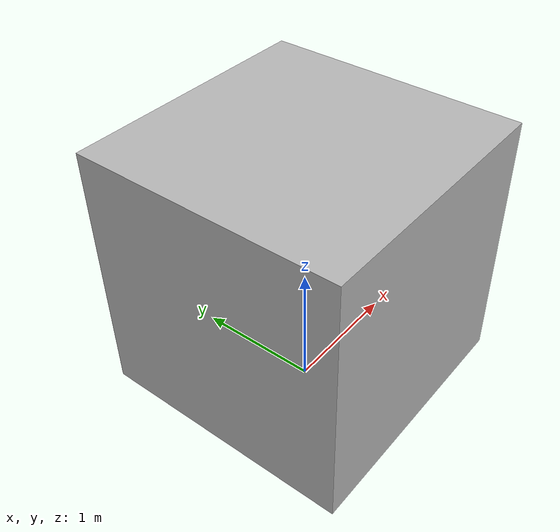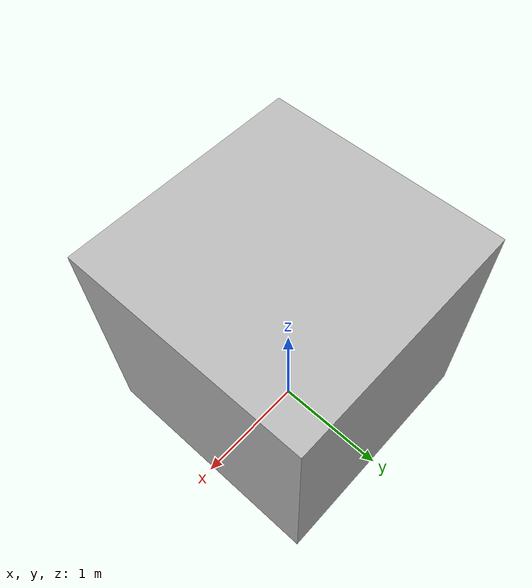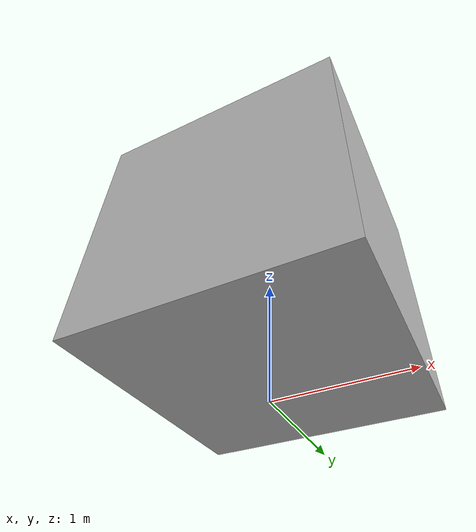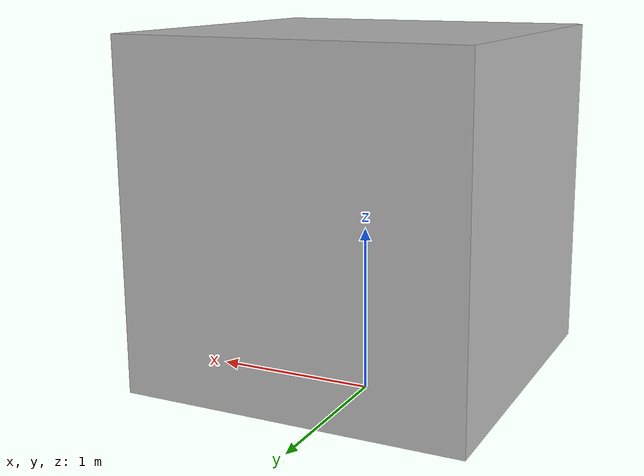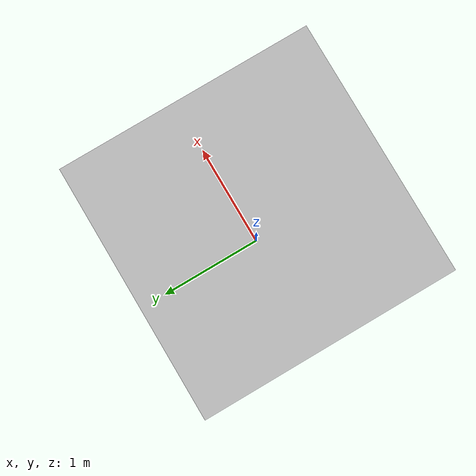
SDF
<?xml version='1.0'?>
<sdf version="1.6">
<model name="kubo">
  <static>true</static>
    <link name="link">
      <visual name="visual">
        <geometry>
          <mesh>
            <uri>model://kubo/meshes/kubo.dae</uri>
          </mesh>
        </geometry>
      </visual>
    </link>
  </model>
</sdf>
